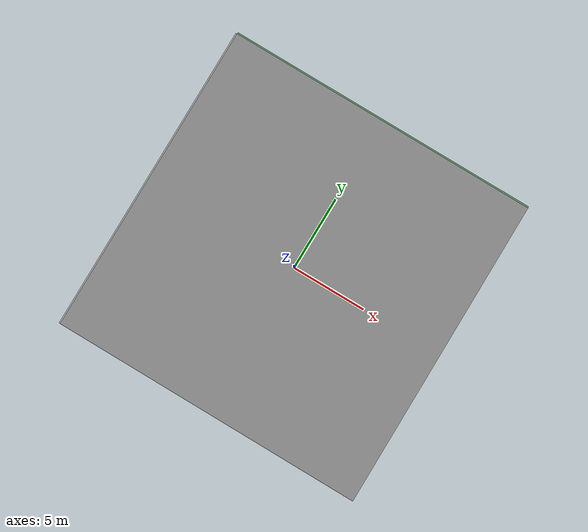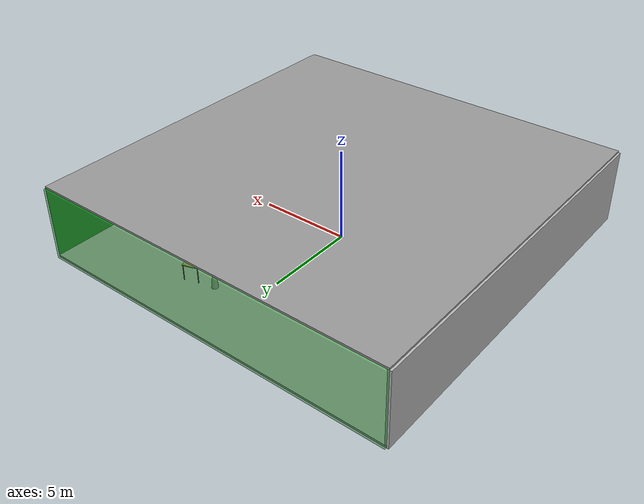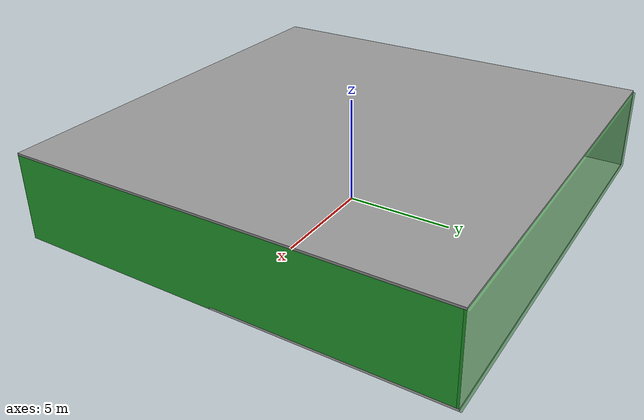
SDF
<sdf version="1.4">
 <world name="default">
  <physics type="ode">
   <max_step_size>0.001</max_step_size>
   <real_time_factor>1</real_time_factor>
   <real_time_update_rate>1000</real_time_update_rate>
   <gravity>0 0 -9.8</gravity>
  </physics>
  <scene><ambient>0.4 0.4 0.4 1</ambient><background>0.7 0.7 0.7 1</background><shadows>1</shadows></scene>
  <model name="Surrounding">
   <static>1</static>
   <link name="Ceiling">
    <collision name="Ceiling_Collision"><geometry><box><size>20 20 0.1</size></box></geometry></collision>
    <visual name="Ceiling_Visual">
     <geometry><box><size>20 20 0.1</size></box></geometry>
     <material>
      <script><uri>file://media/materials/scripts/gazebo.material</uri><name>Gazebo/Grey</name></script>
     </material>
    </visual>
    <pose>0 0 4.05 0 0 0</pose>
   </link>
   <link name="Wall_South">
    <collision name="Wall_South_Collision">
     <geometry><box><size>20 0 4</size></box></geometry>
     <pose>0 0 2 0 -0 0</pose>
    </collision>
    <visual name="Wall_South_Visual">
     <pose>0 0 2 0 -0 0</pose>
     <geometry><box><size>20 0 4</size></box></geometry>
     <material>
      <script><uri>file://media/materials/scripts/gazebo.material</uri><name>Gazebo/Yellow</name></script>
     </material>
    </visual>
    <velocity_decay><linear>0</linear><angular>0</angular></velocity_decay>
    <pose>0 -10 0 0 -0 0</pose>
   </link>
   <link name="Wall_East">
    <collision name="Wall_21_Collision">
     <geometry><box><size>20 0 4</size></box></geometry>
     <pose>0 0 2 0 -0 0</pose>
    </collision>
    <visual name="Wall_21_Visual">
     <pose>0 0 2 0 -0 0</pose>
     <geometry><box><size>20 0 4</size></box></geometry>
     <material>
      <script><uri>file://media/materials/scripts/gazebo.material</uri><name>Gazebo/GreenGlow</name></script>
     </material>
    </visual>
    <velocity_decay><linear>0</linear><angular>0</angular></velocity_decay>
    <pose>10 0 0 0 -0 1.5708</pose>
   </link>
   <link name="Wall_North">
    <collision name="Wall_22_Collision">
     <geometry><box><size>20 0.2 4</size></box></geometry>
     <pose>0 0 2 0 -0 0</pose>
    </collision>
    <visual name="Wall_22_Visual">
     <pose>0 0 2 0 -0 0</pose>
     <geometry><box><size>20 0.2 4</size></box></geometry>
     <material>
      <script><uri>file://media/materials/scripts/gazebo.material</uri><name>Gazebo/GreenTransparent</name></script>
     </material>
    </visual>
    <velocity_decay><linear>0</linear><angular>0</angular></velocity_decay>
    <pose>0 10 0 0 -0 0</pose>
   </link>
   <link name="Wall_West">
    <collision name="Wall_23_Collision">
     <geometry><box><size>20 0.2 4</size></box></geometry>
     <pose>0 0 2 0 -0 0</pose>
    </collision>
    <visual name="Wall_23_Visual">
     <pose>0 0 2 0 -0 0</pose>
     <geometry><box><size>20 0.2 4</size></box></geometry>
     <material>
      <script><uri>file://media/materials/scripts/gazebo.material</uri><name>Gazebo/LightOff</name></script>
     </material>
    </visual>
    <velocity_decay><linear>0</linear><angular>0</angular></velocity_decay>
    <pose>-10 0 0 0 0 -1.5708</pose>
   </link>
   <link name="Ground_link">
    <collision name="collision">
     <pose>0 0 .05 0 -0 0</pose>
     <geometry><box><size>20 20 0.1</size></box></geometry>
    </collision>
    <visual name="visual">
     <pose>0 0 .05 0 -0 0</pose>
     <geometry><box><size>20 20 0.1</size></box></geometry>
     <material>
      <script><uri>file://media/materials/scripts/gazebo.material</uri><name>Gazebo/CloudySky</name></script>
     </material>
    </visual>
   </link>
   <static>1</static>
  </model>
  <spherical_coordinates>
   <surface_model>EARTH_WGS84</surface_model>
   <latitude_deg>0</latitude_deg>
   <longitude_deg>0</longitude_deg>
   <elevation>0</elevation>
   <heading_deg>0</heading_deg>
  </spherical_coordinates>
  <light name="lightball_0" type="diffuse">
   <diffuse>0.8 0.8 0.8 1</diffuse>
   <specular>0.2 0.2 0.2 1</specular>
   <attenuation>
    <range>100</range>
    <constant>0.7</constant>
    <linear>0.01</linear>
    <quadratic>0.001</quadratic>
   </attenuation>
   <direction>-0.5 0.1 -0.9</direction>
   <pose>-0.372806305411 0.168354715882 1.1976641212 0 0 0</pose>
  </light>
  <light name="lightball_1" type="diffuse">
   <diffuse>0.8 0.8 0.8 1</diffuse>
   <specular>0.2 0.2 0.2 1</specular>
   <attenuation>
    <range>100</range>
    <constant>0.7</constant>
    <linear>0.01</linear>
    <quadratic>0.001</quadratic>
   </attenuation>
   <direction>-0.5 0.1 -0.9</direction>
   <pose>-0.985770205809 1.17830062856 2.14261960951 0 0 0</pose>
  </light>
  <light name="lightball_2" type="diffuse">
   <diffuse>0.8 0.8 0.8 1</diffuse>
   <specular>0.2 0.2 0.2 1</specular>
   <attenuation>
    <range>100</range>
    <constant>0.7</constant>
    <linear>0.01</linear>
    <quadratic>0.001</quadratic>
   </attenuation>
   <direction>-0.5 0.1 -0.9</direction>
   <pose>2.48138117161 -7.89655217307 2.14559209338 0 0 0</pose>
  </light>
  <light name="lightball_3" type="diffuse">
   <diffuse>0.8 0.8 0.8 1</diffuse>
   <specular>0.2 0.2 0.2 1</specular>
   <attenuation>
    <range>100</range>
    <constant>0.7</constant>
    <linear>0.01</linear>
    <quadratic>0.001</quadratic>
   </attenuation>
   <direction>-0.5 0.1 -0.9</direction>
   <pose>2.67755707919 -3.98145829915 0.943333763134 0 0 0</pose>
  </light>
  <light name="lightball_4" type="diffuse">
   <diffuse>0.8 0.8 0.8 1</diffuse>
   <specular>0.2 0.2 0.2 1</specular>
   <attenuation>
    <range>100</range>
    <constant>0.7</constant>
    <linear>0.01</linear>
    <quadratic>0.001</quadratic>
   </attenuation>
   <direction>-0.5 0.1 -0.9</direction>
   <pose>-8.38257823162 6.44157370653 0.776019090257 0 0 0</pose>
  </light>
  <light name="lightball_5" type="diffuse">
   <diffuse>0.8 0.8 0.8 1</diffuse>
   <specular>0.2 0.2 0.2 1</specular>
   <attenuation>
    <range>100</range>
    <constant>0.7</constant>
    <linear>0.01</linear>
    <quadratic>0.001</quadratic>
   </attenuation>
   <direction>-0.5 0.1 -0.9</direction>
   <pose>9.03523782869 4.54314830699 1.57170851418 0 0 0</pose>
  </light>
  <light name="lightball_6" type="diffuse">
   <diffuse>0.8 0.8 0.8 1</diffuse>
   <specular>0.2 0.2 0.2 1</specular>
   <attenuation>
    <range>100</range>
    <constant>0.7</constant>
    <linear>0.01</linear>
    <quadratic>0.001</quadratic>
   </attenuation>
   <direction>-0.5 0.1 -0.9</direction>
   <pose>7.21313912731 3.4865370472 3.32554927089 0 0 0</pose>
  </light>
  <light name="lightball_7" type="diffuse">
   <diffuse>0.8 0.8 0.8 1</diffuse>
   <specular>0.2 0.2 0.2 1</specular>
   <attenuation>
    <range>100</range>
    <constant>0.7</constant>
    <linear>0.01</linear>
    <quadratic>0.001</quadratic>
   </attenuation>
   <direction>-0.5 0.1 -0.9</direction>
   <pose>-9.50502679937 4.79956488982 0.76752420629 0 0 0</pose>
  </light>
  <light name="lightball_8" type="diffuse">
   <diffuse>0.8 0.8 0.8 1</diffuse>
   <specular>0.2 0.2 0.2 1</specular>
   <attenuation>
    <range>100</range>
    <constant>0.7</constant>
    <linear>0.01</linear>
    <quadratic>0.001</quadratic>
   </attenuation>
   <direction>-0.5 0.1 -0.9</direction>
   <pose>-8.58518755431 -0.688244517458 0.685290187374 0 0 0</pose>
  </light>
  <light name="lightball_9" type="diffuse">
   <diffuse>0.8 0.8 0.8 1</diffuse>
   <specular>0.2 0.2 0.2 1</specular>
   <attenuation>
    <range>100</range>
    <constant>0.7</constant>
    <linear>0.01</linear>
    <quadratic>0.001</quadratic>
   </attenuation>
   <direction>-0.5 0.1 -0.9</direction>
   <pose>4.31173437657 -4.27193493123 2.78243483098 0 0 0</pose>
  </light>
  <include><uri>model://cabinet</uri><pose>-5.23328518319 -3.45727826745 0 0 0 2.71121707969</pose></include>
  <include><uri>model://cabinet</uri><pose>-5.69947837433 -1.02908878022 0 0 0 0.468818778874</pose></include>
  <include>
   <uri>model://construction_cone</uri>
   <pose>2.52547387608 1.16998758962 0 0 0 1.26902068731</pose>
  </include>
  <include>
   <uri>model://construction_cone</uri>
   <pose>2.06889387266 7.05950444152 0 0 0 1.32322087973</pose>
  </include>
  <include><uri>model://table</uri><pose>3.48034285852 6.79353244924 0 0 0 1.88876525598</pose></include>
 </world>
</sdf>

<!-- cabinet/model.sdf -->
<sdf version="1.5">
  <model name="cabinet">
    <static>true</static>
    <link name="cabinet_bottom_plate">
      <inertial>
        <pose>0 0 -1 0 0 0</pose>
        <inertia>
          <ixx>2.050000</ixx>
          <ixy>0</ixy>
          <ixz>0</ixz>
          <iyy>2.050000</iyy>
          <iyz>0</iyz>
          <izz>2.050000</izz>
        </inertia>
        <mass>25.000000</mass>
      </inertial>
      <collision name="cabinet_bottom_plate_geom">
        <pose>0 0 0.010000 0 0 0</pose>
        <geometry>
          <box>
            <size>0.450000 0.450000 0.020000</size>
          </box>
        </geometry>
      </collision>
      <visual name="cabinet_bottom_plate_geom_visual">
        <pose>0 0 0.010000 0 0 0</pose>
        <geometry>
          <box>
            <size>0.450000 0.450000 0.020000</size>
          </box>
        </geometry>
        <material>
          <script>
            <uri>model://media/materials/scripts/gazebo.material</uri>
            <name>Gazebo/Wood</name>
          </script>
        </material>
      </visual>
      <collision name="cabinet_bottom_plate_geom_cabinet_back_plate">
        <pose>0.235000 0 0.510000 0 0 0</pose>
        <geometry>
          <box>
            <size>0.020000 0.450000 1.020000</size>
          </box>
        </geometry>
      </collision>
      <visual name="cabinet_bottom_plate_geom_cabinet_back_plate_visual">
        <pose>0.235000 0 0.510000 0 0 0</pose>
        <geometry>
          <box>
            <size>0.020000 0.450000 1.020000</size>
          </box>
        </geometry>
        <material>
          <script>
            <uri>model://media/materials/scripts/gazebo.material</uri>
            <name>Gazebo/Wood</name>
          </script>
        </material>
      </visual>
      <collision name="cabinet_bottom_plate_geom_cabinet_left_plate">
        <pose>0 0.235000 0.510000 0 0 0</pose>
        <geometry>
          <box>
            <size>0.450000 0.020000 1.020000</size>
          </box>
        </geometry>
      </collision>
      <visual name="cabinet_bottom_plate_geom_cabinet_left_plate_visual">
        <pose>0 0.235000 0.510000 0 0 0</pose>
        <geometry>
          <box>
            <size>0.450000 0.020000 1.020000</size>
          </box>
        </geometry>
        <material>
          <script>
            <uri>model://media/materials/scripts/gazebo.material</uri>
            <name>Gazebo/Wood</name>
          </script>
        </material>
      </visual>
      <collision name="cabinet_bottom_plate_geom_cabinet_middle_plate">
        <pose>0 0 0.510000 0 0 0</pose>
        <geometry>
          <box>
            <size>0.450000 0.450000 0.020000</size>
          </box>
        </geometry>
      </collision>
      <visual name="cabinet_bottom_plate_geom_cabinet_middle_plate_visual">
        <pose>0 0 0.510000 0 0 0</pose>
        <geometry>
          <box>
            <size>0.450000 0.450000 0.020000</size>
          </box>
        </geometry>
        <material>
          <script>
            <uri>model://media/materials/scripts/gazebo.material</uri>
            <name>Gazebo/Wood</name>
          </script>
        </material>
      </visual>
      <collision name="cabinet_bottom_plate_geom_cabinet_right_plate">
        <pose>0 -0.235000 0.510000 0 0 0</pose>
        <geometry>
          <box>
            <size>0.450000 0.020000 1.020000</size>
          </box>
        </geometry>
      </collision>
      <visual name="cabinet_bottom_plate_geom_cabinet_right_plate_visual">
        <pose>0 -0.235000 0.510000 0 0 0</pose>
        <geometry>
          <box>
            <size>0.450000 0.020000 1.020000</size>
          </box>
        </geometry>
        <material>
          <script>
            <uri>model://media/materials/scripts/gazebo.material</uri>
            <name>Gazebo/Wood</name>
          </script>
        </material>
      </visual>
      <collision name="cabinet_bottom_plate_geom_cabinet_top_plate">
        <pose>0 0 1.010000 0 0 0</pose>
        <geometry>
          <box>
            <size>0.450000 0.450000 0.020000</size>
          </box>
        </geometry>
      </collision>
      <visual name="cabinet_bottom_plate_geom_cabinet_top_plate_visual">
        <pose>0 0 1.010000 0 0 0</pose>
        <geometry>
          <box>
            <size>0.450000 0.450000 0.020000</size>
          </box>
        </geometry>
        <material>
          <script>
            <uri>model://media/materials/scripts/gazebo.material</uri>
            <name>Gazebo/Wood</name>
          </script>
        </material>
      </visual>
    </link>
  </model>
</sdf>

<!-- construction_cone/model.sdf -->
<sdf version="1.5">
  <model name="Construction Cone">
    <link name="link">
      <collision name="collision">
        <geometry>
          <mesh>
            <scale>10 10 10</scale>
            <uri>file://isr-testbed/construction_cone/meshes/construction_cone.dae</uri>
          </mesh>
        </geometry>
      </collision>
      <visual name="visual">
        <geometry>
          <mesh>
            <scale>10 10 10</scale>
            <uri>file://isr-testbed/construction_cone/meshes/construction_cone.dae</uri>
          </mesh>
        </geometry>
      </visual>
    </link>
  </model>
</sdf>

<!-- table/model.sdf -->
<sdf version="1.5">
  <model name="table">
    <static>true</static>
    <link name="link">
      <collision name="surface">
        <pose>0 0 1.0 0 0 0</pose>
        <geometry>
          <box>
            <size>1.5 0.8 0.03</size>
          </box>
        </geometry>
        <surface>
          <friction>
            <ode>
              <mu>0.6</mu>
              <mu2>0.6</mu2>
            </ode>
          </friction>
        </surface>
      </collision>
      <visual name="visual1">
        <pose>0 0 1.0 0 0 0</pose>
        <geometry>
          <box>
            <size>1.5 0.8 0.03</size>
          </box>
        </geometry>
        <material>
          <script>
            <uri>model://media/materials/scripts/gazebo.material</uri>
            <name>Gazebo/Wood</name>
          </script>
        </material>
      </visual>
      <collision name="front_left_leg">
        <pose>0.68 0.38 0.5 0 0 0</pose>
        <geometry>
          <cylinder>
            <radius>0.02</radius>
            <length>1.0</length>
          </cylinder>
        </geometry>
      </collision>
      <visual name="front_left_leg">
        <pose>0.68 0.38 0.5 0 0 0</pose>
        <geometry>
          <cylinder>
            <radius>0.02</radius>
            <length>1.0</length>
          </cylinder>
        </geometry>
        <material>
          <script>
            <uri>model://media/materials/scripts/gazebo.material</uri>
            <name>Gazebo/Grey</name>
          </script>
        </material>
      </visual>
      <collision name="front_right_leg">
        <pose>0.68 -0.38 0.5 0 0 0</pose>
        <geometry>
          <cylinder>
            <radius>0.02</radius>
            <length>1.0</length>
          </cylinder>
        </geometry>
      </collision>
      <visual name="front_right_leg">
        <pose>0.68 -0.38 0.5 0 0 0</pose>
        <geometry>
          <cylinder>
            <radius>0.02</radius>
            <length>1.0</length>
          </cylinder>
        </geometry>
        <material>
          <script>
            <uri>model://media/materials/scripts/gazebo.material</uri>
            <name>Gazebo/Grey</name>
          </script>
        </material>
      </visual>
      <collision name="back_right_leg">
        <pose>-0.68 -0.38 0.5 0 0 0</pose>
        <geometry>
          <cylinder>
            <radius>0.02</radius>
            <length>1.0</length>
          </cylinder>
        </geometry>
      </collision>
      <visual name="back_right_leg">
        <pose>-0.68 -0.38 0.5 0 0 0</pose>
        <geometry>
          <cylinder>
            <radius>0.02</radius>
            <length>1.0</length>
          </cylinder>
        </geometry>
        <material>
          <script>
            <uri>model://media/materials/scripts/gazebo.material</uri>
            <name>Gazebo/Grey</name>
          </script>
        </material>
      </visual>
      <collision name="back_left_leg">
        <pose>-0.68 0.38 0.5 0 0 0</pose>
        <geometry>
          <cylinder>
            <radius>0.02</radius>
            <length>1.0</length>
          </cylinder>
        </geometry>
      </collision>
      <visual name="back_left_leg">
        <pose>-0.68 0.38 0.5 0 0 0</pose>
        <geometry>
          <cylinder>
            <radius>0.02</radius>
            <length>1.0</length>
          </cylinder>
        </geometry>
        <material>
          <script>
            <uri>model://media/materials/scripts/gazebo.material</uri>
            <name>Gazebo/Grey</name>
          </script>
        </material>
      </visual>
    </link>
  </model>
</sdf>
